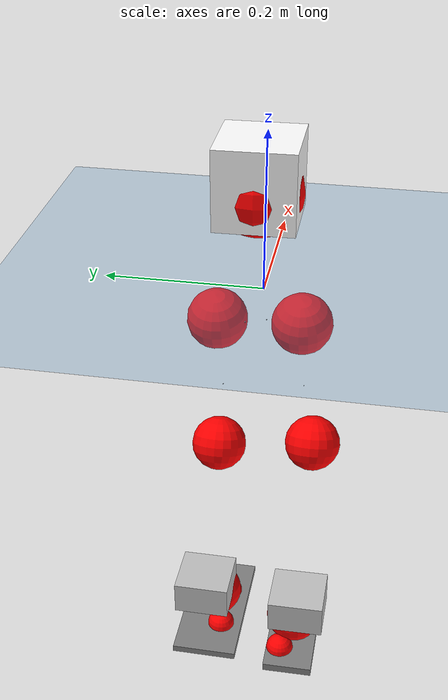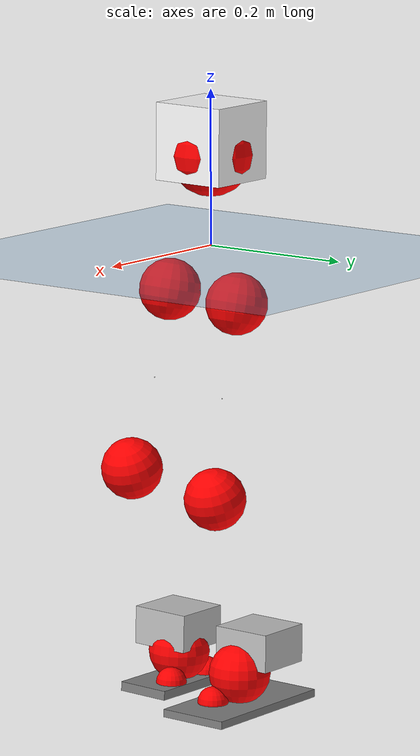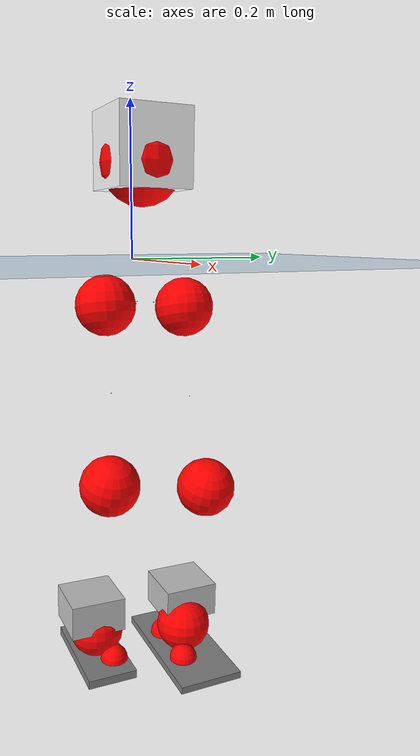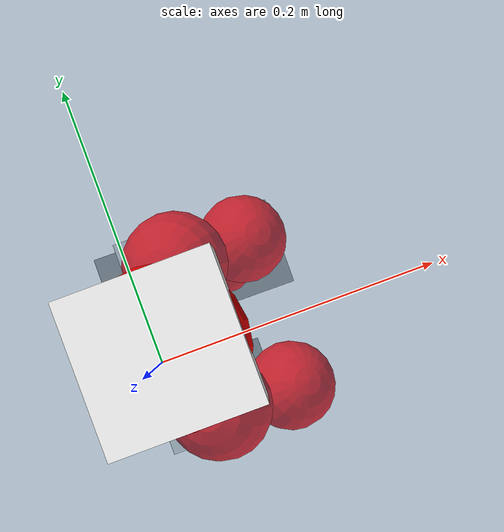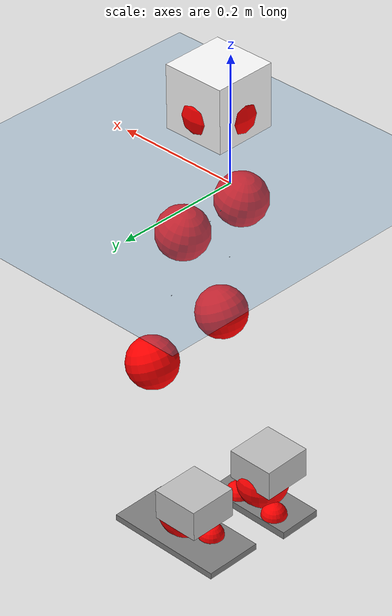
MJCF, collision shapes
<mujoco model="pi_12dof_release_v1">
  <compiler angle="radian" assetdir="assets" balanceinertia="true" inertiafromgeom="false"/>

  <option timestep="0.005" density="1.2" viscosity="2e-05"/>

  <size nkey="1"/>

  <visual>
    <quality shadowsize="8192"/>
    <map shadowclip="0.5"/>
  </visual>

  <default>
    <default class="/">
      <joint armature="0.01" damping="0.01" frictionloss="0.01"/>
      <geom contype="0" conaffinity="0" group="1" solref="-1000 -80"/>
      <site size="0.01 0.005 0.005" group="5"/>
      <general forcelimited="true" biastype="affine" gainprm="20" biasprm="0 -20 -0.5"/>
      <default class="foot">
        <geom size="0.0845 0.036 0.005" type="box" condim="6" group="4" priority="1" friction="0.9 0.2 0.2" solimp="0.015 1 0.005"/>
      </default>
      <default class="reward_collision_sphere">
        <geom group="5" rgba="1 0 0 1"/>
      </default>
    </default>
  </default>

  <asset>
    <texture type="skybox" colorspace="auto" name="//unnamed_texture_0" builtin="gradient" rgb1="0.95 0.95 0.95" rgb2="0.95 0.95 0.95" width="100" height="600"/>
    <texture type="2d" colorspace="auto" name="texplane" builtin="checker" rgb1="0.345 0.575 0.748" rgb2="0.345 0.575 0.748" markrgb="1 1 1" width="512" height="512"/>
    <material name="MatPlane" class="/" texture="texplane" texuniform="true" texrepeat="2 2" specular="0.9"/>
    <mesh name="baselink_1" class="/" file="baselink_1.STL"/>
    <mesh name="r_hip_pitch_link" class="/" file="r_hip_pitch_link.STL"/>
    <mesh name="r_hip_roll_link" class="/" file="r_hip_roll_link.STL"/>
    <mesh name="r_thigh_link" class="/" file="r_thigh_link.STL"/>
    <mesh name="r_calf_link" class="/" file="r_calf_link.STL"/>
    <mesh name="r_ankle_pitch_link" class="/" file="r_ankle_pitch_link.STL"/>
    <mesh name="r_ankle_roll_link" class="/" file="r_ankle_roll_link.STL"/>
    <mesh name="l_hip_pitch_link" class="/" file="l_hip_pitch_link.STL"/>
    <mesh name="l_hip_roll_link" class="/" file="l_hip_roll_link.STL"/>
    <mesh name="l_thigh_link" class="/" file="l_thigh_link.STL"/>
    <mesh name="l_calf_link" class="/" file="l_calf_link.STL"/>
    <mesh name="l_ankle_pitch_link" class="/" file="l_ankle_pitch_link.STL"/>
    <mesh name="l_ankle_roll_link" class="/" file="l_ankle_roll_link.STL"/>
  </asset>

  <worldbody>
    <geom name="floor" class="/" size="100 100 0.125" type="plane" group="0" material="MatPlane"/>
    <light name="toplight_shadow" class="/" pos="0 0 5" dir="0.0990148 0.0990148 -0.990148" type="directional" ambient="0.04 0.04 0.04" diffuse="0.55 0.55 0.55" specular="0.12 0.12 0.12"/>
    <light name="toplight_fill" class="/" pos="0 0 5" dir="0.0990148 0.0990148 -0.990148" type="directional" castshadow="false" ambient="0.04 0.04 0.04" diffuse="0.3 0.3 0.3" specular="0.08 0.08 0.08"/>
    <body name="trunk" pos="0.0129199 0.00873429 0.00484306" quat="0.999987 -0.00487224 -0.000653907 0.00151915">
      <inertial pos="0.014918 -3.31371e-05 0.0664375" quat="0.703735 -0.0015609 -0.00778089 0.710419" mass="1.96065" diaginertia="0.000448434 0.00246966 0.0434378"/>
      <joint name="//unnamed_joint_0" type="free"/>
      <geom name="//unnamed_geom_1" class="/" type="mesh" density="0" rgba="1 1 1 1" mesh="baselink_1"/>
      <geom name="//unnamed_geom_2" class="/" size="0.0494042 0.0494042 0.0494042" pos="0 0 0.13223" type="box" rgba="1 1 1 1"/>
      <geom name="//unnamed_geom_3" class="reward_collision_sphere" size="0.0543446" pos="0 0 0.115701"/>
      <site name="imu" class="/" pos="0.00354965 -0.0224094 0.0163358" size="0.00988083"/>
      <camera name="track" class="/" pos="0 -1.54913 0" quat="0.707107 0.707107 0 0" mode="trackcom"/>
      <camera name="ego_camera" class="/" pos="0.0402604 0 0.297518" quat="-0.5 -0.5 0.5 0.5"/>
      <body name="r_hip_pitch_link" pos="0.00752355 -0.0101261 -0.0594223" quat="0.992802 -0.00382256 -0.119696 -0.00144353">
        <inertial pos="0.0143383 -0.0363429 0.00624974" quat="-0.0192498 0.705643 -0.0275222 0.707771" mass="0.310994" diaginertia="4.23917e-06 2.70948e-05 0.000805816"/>
        <joint name="r_hip_pitch_joint" class="/" pos="0 0 0" axis="0.0280796 -0.999045 -0.0334723" stiffness="0.0634563" range="-1.76231 1.17235" armature="0.0102991" damping="0.0306459" frictionloss="0.0054757"/>
        <geom name="//unnamed_geom_4" class="/" type="mesh" density="0" rgba="0.75294 0.75294 0.75294 1" mesh="r_hip_pitch_link"/>
        <geom name="//unnamed_geom_5" class="/" size="0.000494042 0.000494042 0.000494042" type="box" rgba="0.75294 0.75294 0.75294 1"/>
        <body name="r_hip_roll_link" pos="0.00245789 -0.0453139 -0.00460858" quat="1 -6.88255e-05 0.00010055 -7.52525e-05">
          <inertial pos="-0.0138167 -0.00027683 -0.11221" quat="0.706129 -0.0793054 -0.0822703 0.698802" mass="0.394797" diaginertia="1.5218e-05 7.56262e-05 0.00170508"/>
          <joint name="r_hip_roll_joint" class="/" pos="0 0 0" axis="-0.999997 -0.000850177 0.00215235" range="0.0902358 0.367848" armature="0.0162698" damping="0.0491064" frictionloss="0.0101741"/>
          <geom name="//unnamed_geom_6" class="/" type="mesh" density="0" rgba="0.75294 0.75294 0.75294 1" mesh="r_hip_roll_link"/>
          <geom name="//unnamed_geom_7" class="/" size="0.000494042 0.000494042 0.000494042" type="box" rgba="0.75294 0.75294 0.75294 1"/>
          <geom name="//unnamed_geom_8" class="reward_collision_sphere" size="0.0395233"/>
          <body name="r_thigh_link" pos="-0.000605868 -0.00229384 -0.113811" quat="0.999992 0.00229985 -0.00330835 -0.000459806">
            <inertial pos="-0.00731068 -0.00562315 -0.0692127" quat="0.711764 0.701022 0.0148508 -0.041704" mass="0.103926" diaginertia="5.8371e-06 2.42647e-05 0.000786858"/>
            <joint name="r_thigh_joint" class="/" pos="0 0 0" axis="-0.0129692 0.0481207 -0.998757" stiffness="0.0638071" range="-0.314925 0.432942" armature="0.0157581" damping="0" frictionloss="0.0098241"/>
            <geom name="//unnamed_geom_9" class="/" type="mesh" density="0" rgba="0.75294 0.75294 0.75294 1" mesh="r_thigh_link"/>
            <geom name="//unnamed_geom_10" class="/" size="0.000494042 0.000494042 0.000494042" type="box" rgba="0.75294 0.75294 0.75294 1"/>
            <body name="r_calf_link" pos="2.23982e-05 -0.0129263 -0.119012" quat="0.947299 -0.00268008 0.320339 -0.000152924">
              <inertial pos="-0.010128 -0.00410289 -0.116115" quat="0.999979 -0.00464193 0.00072347 0.00442457" mass="0.569021" diaginertia="0.000142557 0.000896675 0.0021089"/>
              <joint name="r_calf_joint" class="/" pos="0 0 0" axis="0.00362671 -0.99999 -0.00249386" range="-1.64909 0.872294" armature="0.00225664" damping="0.056707" frictionloss="0.00302774"/>
              <geom name="//unnamed_geom_11" class="/" type="mesh" density="0" rgba="0.75294 0.75294 0.75294 1" mesh="r_calf_link"/>
              <geom name="//unnamed_geom_12" class="/" size="0.000494042 0.000494042 0.000494042" type="box" rgba="0.75294 0.75294 0.75294 1"/>
              <geom name="//unnamed_geom_13" class="reward_collision_sphere" size="0.0395233"/>
              <body name="r_ankle_pitch_link" pos="0.00038376 0.00361746 -0.242883" quat="0.979162 -0.00244864 -0.203033 -0.00366154">
                <inertial pos="0.0115327 0.0163211 0.00342365" quat="0.00263976 0.710665 0.00132896 0.703525" mass="0.210487" diaginertia="1.46996e-05 6.97195e-05 0.00175927"/>
                <joint name="r_ankle_pitch_joint" class="/" pos="0 0 0" axis="0.0574929 -0.997681 0.0364351" stiffness="0.0625925" range="-1.09285 0.306967" armature="0.0103918" damping="0.0151759" frictionloss="0.0140706"/>
                <geom name="//unnamed_geom_14" class="/" type="mesh" density="0" rgba="0.75294 0.75294 0.75294 1" mesh="r_ankle_pitch_link"/>
                <geom name="//unnamed_geom_15" class="/" size="0.0385353 0.0395233 0.0247021" type="box" rgba="0.75294 0.75294 0.75294 1"/>
                <body name="r_ankle_roll_link" pos="0.032147 0.00684764 0.000365422" quat="1 -0.000159704 -0.000100418 -4.25337e-05">
                  <inertial pos="-0.0192864 0.00027918 -0.0205581" quat="0.560578 0.434504 0.429154 0.559273" mass="0.417455" diaginertia="3.78291e-05 0.000278042 0.00305007"/>
                  <joint name="r_ankle_roll_joint" class="/" pos="0 0 0" axis="-0.997199 0.071871 0.0206927" range="-0.145067 0.364896" armature="0.00934062" damping="0.0392662" frictionloss="0.0103681"/>
                  <geom name="//unnamed_geom_16" class="/" type="mesh" density="0" rgba="0.75294 0.75294 0.75294 1" mesh="r_ankle_roll_link"/>
                  <geom name="//unnamed_geom_17" class="/" type="mesh" rgba="0.75294 0.75294 0.75294 1" mesh="r_ankle_roll_link"/>
                  <geom name="right_foot" class="foot" size="0.0749605 0.0353929 0.00598604" pos="-0.027377 0 -0.0727266"/>
                  <geom name="//unnamed_geom_19" class="reward_collision_sphere" size="0.0395233" pos="-0.0268402 0 -0.0330576"/>
                  <geom name="//unnamed_geom_20" class="reward_collision_sphere" size="0.0197617" pos="0.00805207 0.0154913 -0.0661151"/>
                  <geom name="//unnamed_geom_21" class="reward_collision_sphere" size="0.0197617" pos="-0.0644166 0.0154913 -0.0661151"/>
                  <site name="right_foot" class="foot" pos="-0.027377 0 -0.0727266" size="0.00988083"/>
                </body>
              </body>
            </body>
          </body>
        </body>
      </body>
      <body name="l_hip_pitch_link" pos="0.0019272 0.0162866 -0.0617661" quat="0.99176 -0.00595213 -0.127941 -0.00272255">
        <inertial pos="-0.0124847 0.0443883 -0.00127965" quat="-0.0374786 0.705458 0.0296696 0.707138" mass="0.36509" diaginertia="5.72812e-06 2.60256e-05 0.00129443"/>
        <joint name="l_hip_pitch_joint" class="/" pos="0 0 0" axis="-0.00135837 0.999973 0.00720092" stiffness="0.0204461" range="-1.39063 1.77298" armature="0.00511485" damping="0.0498406" frictionloss="0.00729372"/>
        <geom name="//unnamed_geom_22" class="/" type="mesh" density="0" rgba="0.75294 0.75294 0.75294 1" mesh="l_hip_pitch_link"/>
        <geom name="//unnamed_geom_23" class="/" size="0.000494042 0.000494042 0.000494042" type="box" rgba="0.75294 0.75294 0.75294 1"/>
        <body name="l_hip_roll_link" pos="0.0123093 0.0386824 -0.00922962" quat="0.999981 0.00366752 0.00299123 -0.00406446">
          <inertial pos="0.000657807 0.00240237 -0.0986764" quat="0.697389 -0.0190218 -0.079085 0.712062" mass="0.426731" diaginertia="1.42751e-05 8.73225e-05 0.00151078"/>
          <joint name="l_hip_roll_joint" class="/" pos="0 0 0" axis="-0.999569 0.0258741 0.0138407" range="-0.427591 0.211626" armature="0.00527605" damping="0.0742429" frictionloss="0.00682792"/>
          <geom name="//unnamed_geom_24" class="/" type="mesh" density="0" rgba="0.75294 0.75294 0.75294 1" mesh="l_hip_roll_link"/>
          <geom name="//unnamed_geom_25" class="/" size="0.000494042 0.000494042 0.000494042" type="box" rgba="0.75294 0.75294 0.75294 1"/>
          <geom name="//unnamed_geom_26" class="reward_collision_sphere" size="0.0395233"/>
          <body name="l_thigh_link" pos="-0.00394869 -0.0015489 -0.12064" quat="1 -0.000276494 0.000248418 -0.000595762">
            <inertial pos="0.0014417 -0.00121723 -0.085745" quat="0.67371 0.738979 0.00404845 0.00294488" mass="0.109082" diaginertia="5.56611e-06 2.69815e-05 0.000724276"/>
            <joint name="l_thigh_joint" class="/" pos="0 0 0" axis="-0.00256391 0.0127652 -0.999915" range="-0.585238 0.3134" armature="0.0135776" damping="0.00187068" frictionloss="0.0104849"/>
            <geom name="//unnamed_geom_27" class="/" type="mesh" density="0" rgba="0.75294 0.75294 0.75294 1" mesh="l_thigh_link"/>
            <geom name="//unnamed_geom_28" class="/" size="0.000494042 0.000494042 0.000494042" type="box" rgba="0.75294 0.75294 0.75294 1"/>
            <body name="l_calf_link" pos="-0.00285012 0.0126753 -0.126206" quat="0.946827 0.000212695 0.321723 0.00365173">
              <inertial pos="0.000231914 -0.00707723 -0.117186" quat="0.998481 -0.0370045 0.0329814 -0.0240529" mass="0.779034" diaginertia="0.000141195 0.000869891 0.00226044"/>
              <joint name="l_calf_joint" class="/" pos="0 0 0" axis="0.00864045 0.999927 0.00839074" stiffness="0.0107517" range="-0.611701 1.62888" armature="0.016536" damping="0.00528053" frictionloss="0.00339868"/>
              <geom name="//unnamed_geom_29" class="/" type="mesh" density="0" rgba="0.75294 0.75294 0.75294 1" mesh="l_calf_link"/>
              <geom name="//unnamed_geom_30" class="/" size="0.000494042 0.000494042 0.000494042" type="box" rgba="0.75294 0.75294 0.75294 1"/>
              <geom name="//unnamed_geom_31" class="reward_collision_sphere" size="0.0395233"/>
              <body name="l_ankle_pitch_link" pos="0.000629906 0.00671576 -0.221016" quat="0.980397 0.00108374 -0.197019 -0.00196315">
                <inertial pos="0.00238141 0.00551463 0.000269266" quat="-0.00318375 0.707855 0.0084249 0.7063" mass="0.192928" diaginertia="1.54389e-05 6.43652e-05 0.00179513"/>
                <joint name="l_ankle_pitch_joint" class="/" pos="0 0 0" axis="0.000225656 0.999963 0.00855304" stiffness="0.000714185" range="-0.476864 1.29111" armature="0.0101701" damping="0" frictionloss="0.00726516"/>
                <geom name="//unnamed_geom_32" class="/" type="mesh" density="0" rgba="0.75294 0.75294 0.75294 1" mesh="l_ankle_pitch_link"/>
                <geom name="//unnamed_geom_33" class="/" size="0.0385353 0.0395233 0.0247021" type="box" rgba="0.75294 0.75294 0.75294 1"/>
                <body name="l_ankle_roll_link" pos="0.0553969 -0.00927521 -0.0014614" quat="1 -0.000604664 -0.000582401 -0.000419492">
                  <inertial pos="-0.0270652 -0.0033879 -0.030764" quat="0.569147 0.419047 0.448834 0.546827" mass="0.48267" diaginertia="5.37977e-05 0.000373354 0.00365259"/>
                  <joint name="l_ankle_roll_joint" class="/" pos="0 0 0" axis="-0.998729 0.03486 0.0364087" stiffness="0.0362352" range="-0.0905738 0.16787" armature="0.00983826" damping="0" frictionloss="0.00841563"/>
                  <geom name="//unnamed_geom_34" class="/" type="mesh" density="0" rgba="0.75294 0.75294 0.75294 1" mesh="l_ankle_roll_link"/>
                  <geom name="//unnamed_geom_35" class="/" type="mesh" rgba="0.75294 0.75294 0.75294 1" mesh="l_ankle_roll_link"/>
                  <geom name="left_foot" class="foot" size="0.0975182 0.0465423 0.00507228" pos="-0.027377 0 -0.0727266"/>
                  <geom name="//unnamed_geom_37" class="reward_collision_sphere" size="0.0395233" pos="-0.0268402 0 -0.0330576"/>
                  <geom name="//unnamed_geom_38" class="reward_collision_sphere" size="0.0197617" pos="0.00805207 -0.0154913 -0.0661151"/>
                  <geom name="//unnamed_geom_39" class="reward_collision_sphere" size="0.0197617" pos="-0.0644166 -0.0154913 -0.0661151"/>
                  <site name="left_foot" class="foot" pos="-0.027377 0 -0.0727266" size="0.00988083"/>
                </body>
              </body>
            </body>
          </body>
        </body>
      </body>
    </body>
  </worldbody>

  <contact>
    <pair class="/" geom1="floor" geom2="right_foot" name="//unnamed_contact_1"/>
    <pair class="/" geom1="floor" geom2="left_foot" name="//unnamed_contact_0"/>
  </contact>

  <actuator>
    <general name="r_hip_pitch_joint" class="/" joint="r_hip_pitch_joint" forcerange="-22.685 22.685" gainprm="19.0687" biasprm="0 -19.0687 -0.583739"/>
    <general name="r_hip_roll_joint" class="/" joint="r_hip_roll_joint" forcerange="-20.0698 20.0698" gainprm="19.0687" biasprm="0 -19.0687 -0.583739"/>
    <general name="r_thigh_joint" class="/" joint="r_thigh_joint" forcerange="-19.9439 19.9439" gainprm="19.0687" biasprm="0 -19.0687 -0.583739"/>
    <general name="r_calf_joint" class="/" joint="r_calf_joint" forcerange="-22.1545 22.1545" gainprm="19.0687" biasprm="0 -19.0687 -0.583739"/>
    <general name="r_ankle_pitch_joint" class="/" joint="r_ankle_pitch_joint" forcerange="-19.0477 19.0477" gainprm="19.0687" biasprm="0 -19.0687 -0.583739"/>
    <general name="r_ankle_roll_joint" class="/" joint="r_ankle_roll_joint" forcerange="-22.2416 22.2416" gainprm="19.0687" biasprm="0 -19.0687 -0.583739"/>
    <general name="l_hip_pitch_joint" class="/" joint="l_hip_pitch_joint" forcerange="-20.7645 20.7645" gainprm="19.0687" biasprm="0 -19.0687 -0.583739"/>
    <general name="l_hip_roll_joint" class="/" joint="l_hip_roll_joint" forcerange="-25.8113 25.8113" gainprm="19.0687" biasprm="0 -19.0687 -0.583739"/>
    <general name="l_thigh_joint" class="/" joint="l_thigh_joint" forcerange="-20.8216 20.8216" gainprm="19.0687" biasprm="0 -19.0687 -0.583739"/>
    <general name="l_calf_joint" class="/" joint="l_calf_joint" forcerange="-9.89471 9.89471" gainprm="19.0687" biasprm="0 -19.0687 -0.583739"/>
    <general name="l_ankle_pitch_joint" class="/" joint="l_ankle_pitch_joint" forcerange="-20.0573 20.0573" gainprm="19.0687" biasprm="0 -19.0687 -0.583739"/>
    <general name="l_ankle_roll_joint" class="/" joint="l_ankle_roll_joint" forcerange="-28.0275 28.0275" gainprm="19.0687" biasprm="0 -19.0687 -0.583739"/>
  </actuator>

  <sensor>
    <gyro site="imu" name="imu_angular_velocity"/>
    <velocimeter site="imu" name="imu_linear_velocity"/>
    <framelinvel objtype="site" objname="left_foot" name="left_foot_global_linear_velocity"/>
    <framelinvel objtype="site" objname="right_foot" name="right_foot_global_linear_velocity"/>
  </sensor>

  <keyframe>
    <key name="home" qpos="0 0 0.291 1 0 0 0 0.4 0 0 -0.8 0.4 0 -0.4 0 0 0.8 -0.4 0"/>
  </keyframe>
</mujoco>
